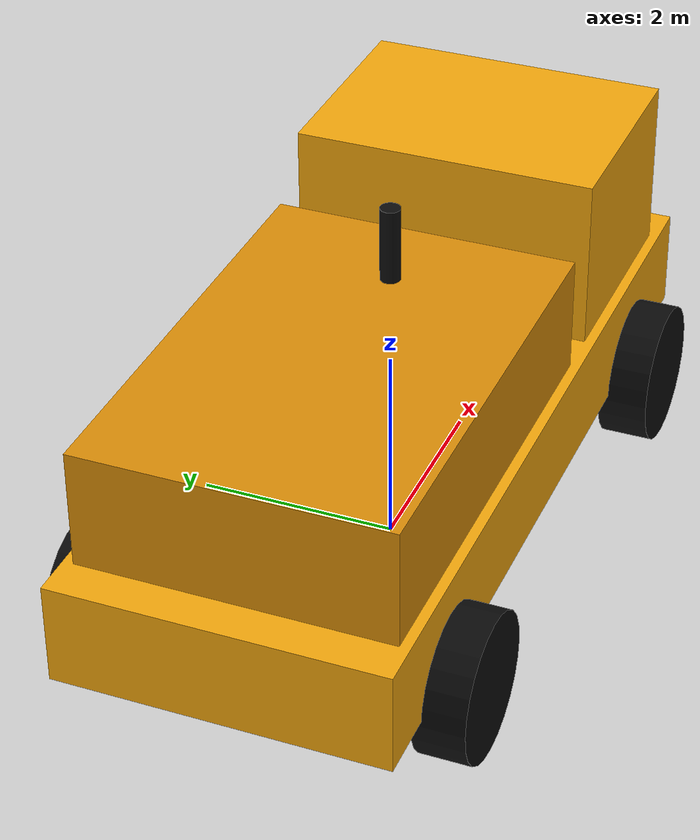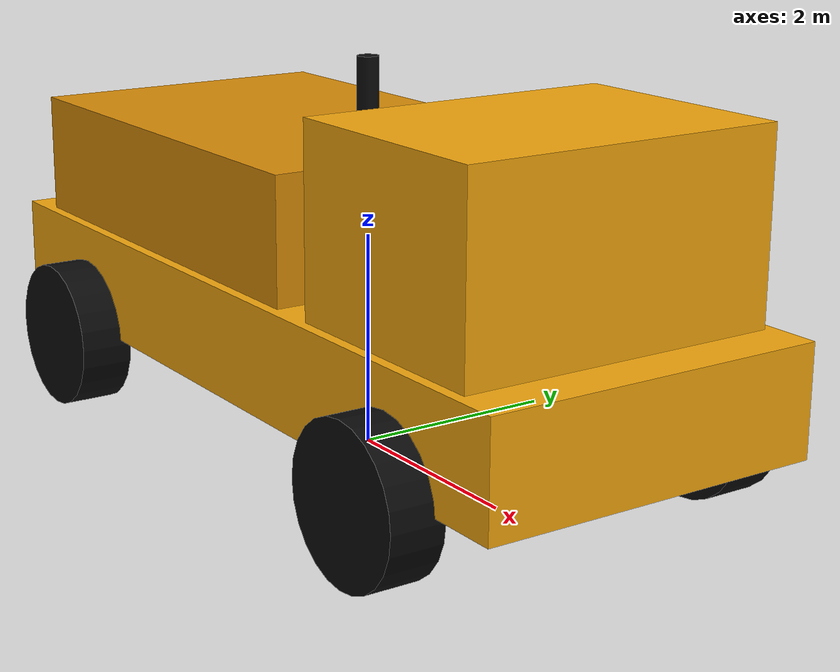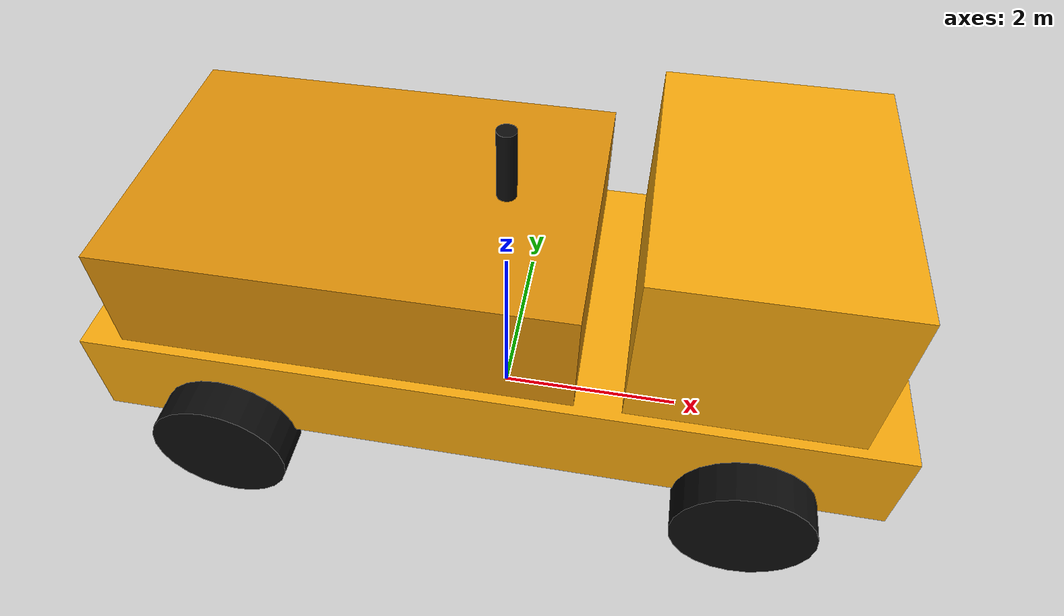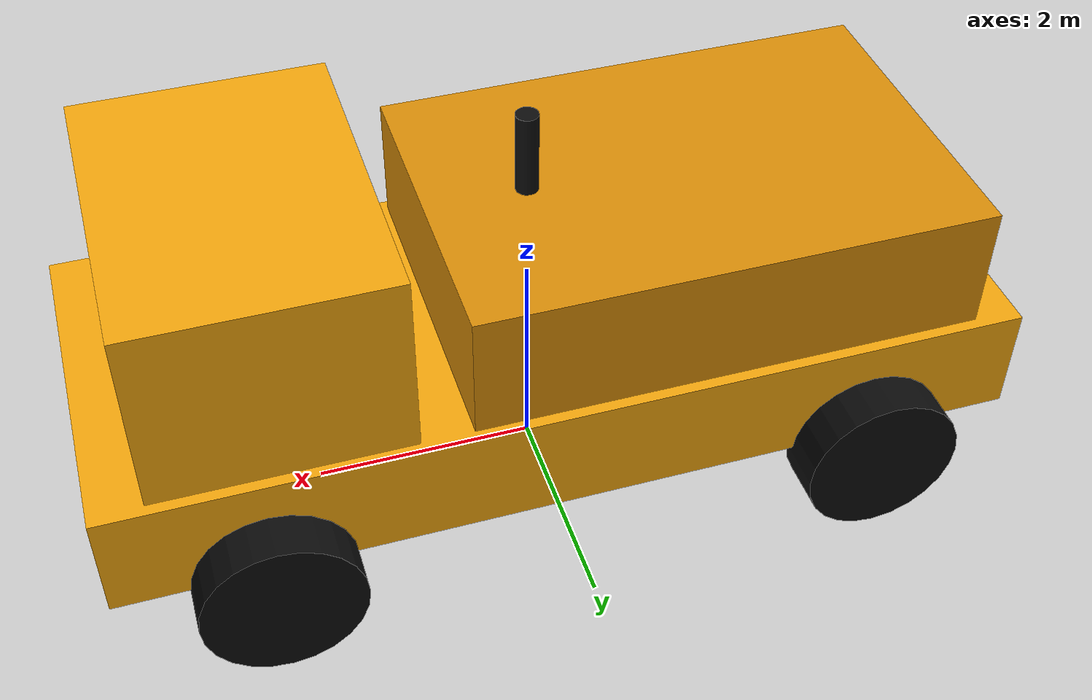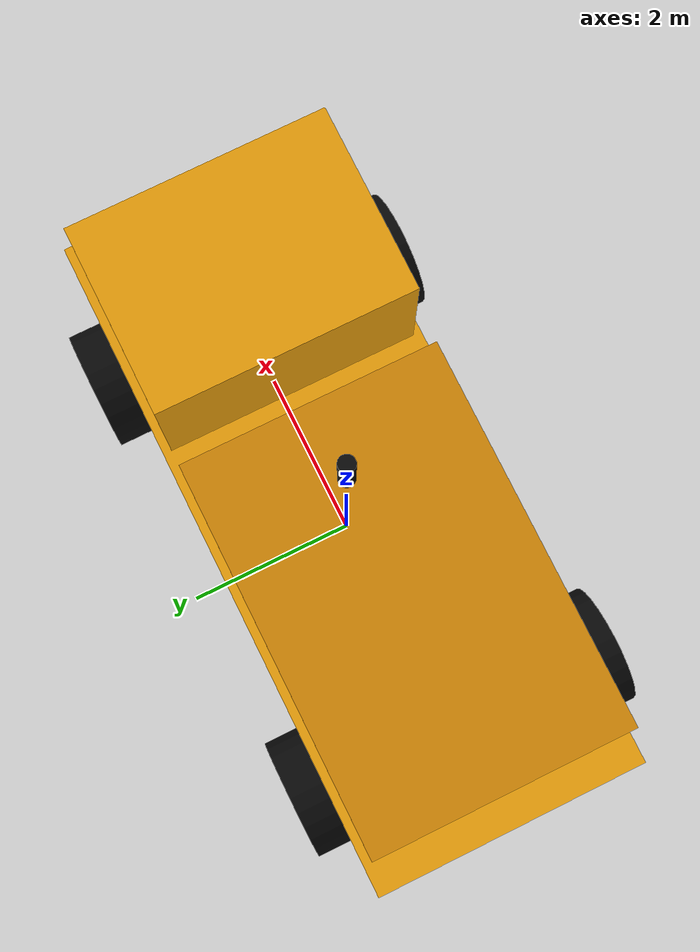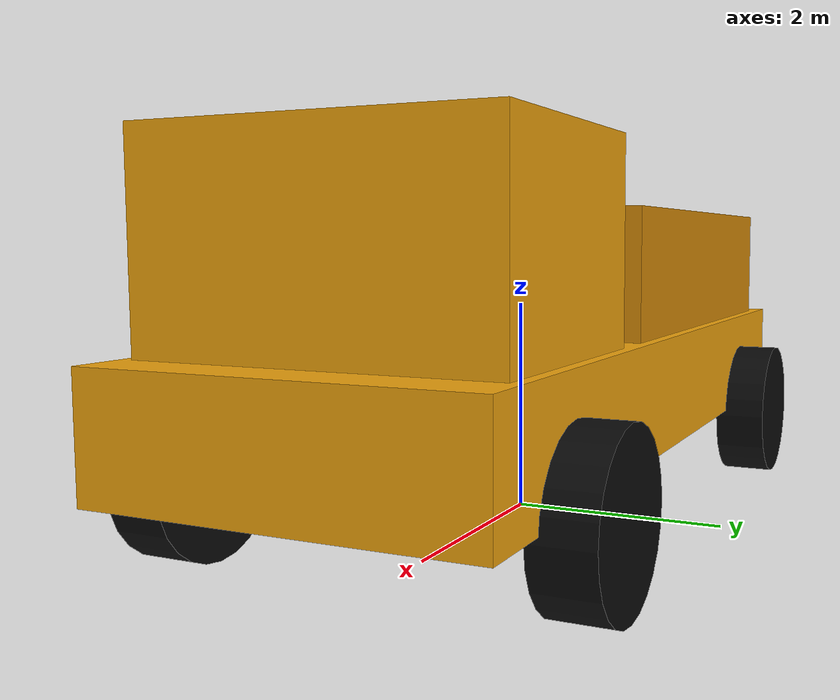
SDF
<?xml version="1.0"?>
<sdf version="1.9">
  <model name="HEMM_Dumper_01">
    <pose>0 0 0 0 0 0</pose>
    <self_collide>false</self_collide>

    <!-- Main chassis -->
    <link name="chassis">
      <pose>0 0 1.25 0 0 0</pose>
      <inertial>
        <mass>9000</mass>
        <inertia>
          <ixx>8000</ixx><iyy>22000</iyy><izz>26000</izz>
          <ixy>0</ixy><ixz>0</ixz><iyz>0</iyz>
        </inertia>
      </inertial>
      <collision name="collision">
        <geometry><box><size>8.0 3.2 1.0</size></box></geometry>
      </collision>
      <visual name="visual">
        <geometry><box><size>8.0 3.2 1.0</size></box></geometry>
        <material>
          <ambient>0.95 0.65 0.05 1</ambient>
          <diffuse>0.95 0.65 0.05 1</diffuse>
        </material>
      </visual>
    </link>

    <!-- Front cab -->
    <link name="front_body">
      <pose>2.45 0 2.35 0 0 0</pose>
      <inertial>
        <mass>1800</mass>
        <inertia>
          <ixx>1600</ixx><iyy>2400</iyy><izz>1800</izz>
          <ixy>0</ixy><ixz>0</ixz><iyz>0</iyz>
        </inertia>
      </inertial>
      <collision name="collision">
        <geometry><box><size>2.2 3.0 2.2</size></box></geometry>
      </collision>
      <visual name="visual">
        <geometry><box><size>2.2 3.0 2.2</size></box></geometry>
        <material>
          <ambient>0.95 0.65 0.05 1</ambient>
          <diffuse>0.95 0.65 0.05 1</diffuse>
        </material>
      </visual>
    </link>

    <!-- Dump bed -->
    <link name="dump_bed">
      <pose>-1.35 0 2.15 0 0 0</pose>
      <inertial>
        <mass>1400</mass>
        <inertia>
          <ixx>1700</ixx><iyy>2800</iyy><izz>3000</izz>
          <ixy>0</ixy><ixz>0</ixz><iyz>0</iyz>
        </inertia>
      </inertial>
      <collision name="collision">
        <geometry><box><size>4.5 3.0 1.5</size></box></geometry>
      </collision>
      <visual name="visual">
        <geometry><box><size>4.5 3.0 1.5</size></box></geometry>
        <material>
          <ambient>0.85 0.55 0.03 1</ambient>
          <diffuse>0.85 0.55 0.03 1</diffuse>
        </material>
      </visual>
    </link>

    <!-- Four wheels. Wheel cylinders have their axis along Y. -->
    <link name="left_front_wheel">
      <pose>2.65 1.75 0.70 1.5707963 0 0</pose>
      <inertial>
        <mass>450</mass>
        <inertia>
          <ixx>82</ixx><iyy>110</iyy><izz>82</izz>
          <ixy>0</ixy><ixz>0</ixz><iyz>0</iyz>
        </inertia>
      </inertial>
      <collision name="collision">
        <geometry><cylinder><radius>0.70</radius><length>0.50</length></cylinder></geometry>
      </collision>
      <visual name="visual">
        <geometry><cylinder><radius>0.70</radius><length>0.50</length></cylinder></geometry>
        <material>
          <ambient>0.04 0.04 0.04 1</ambient>
          <diffuse>0.04 0.04 0.04 1</diffuse>
        </material>
      </visual>
    </link>

    <link name="right_front_wheel">
      <pose>2.65 -1.75 0.70 1.5707963 0 0</pose>
      <inertial>
        <mass>450</mass>
        <inertia>
          <ixx>82</ixx><iyy>110</iyy><izz>82</izz>
          <ixy>0</ixy><ixz>0</ixz><iyz>0</iyz>
        </inertia>
      </inertial>
      <collision name="collision">
        <geometry><cylinder><radius>0.70</radius><length>0.50</length></cylinder></geometry>
      </collision>
      <visual name="visual">
        <geometry><cylinder><radius>0.70</radius><length>0.50</length></cylinder></geometry>
        <material>
          <ambient>0.04 0.04 0.04 1</ambient>
          <diffuse>0.04 0.04 0.04 1</diffuse>
        </material>
      </visual>
    </link>

    <link name="left_rear_wheel">
      <pose>-2.65 1.75 0.70 1.5707963 0 0</pose>
      <inertial>
        <mass>500</mass>
        <inertia>
          <ixx>92</ixx><iyy>122</iyy><izz>92</izz>
          <ixy>0</ixy><ixz>0</ixz><iyz>0</iyz>
        </inertia>
      </inertial>
      <collision name="collision">
        <geometry><cylinder><radius>0.70</radius><length>0.50</length></cylinder></geometry>
      </collision>
      <visual name="visual">
        <geometry><cylinder><radius>0.70</radius><length>0.50</length></cylinder></geometry>
        <material>
          <ambient>0.04 0.04 0.04 1</ambient>
          <diffuse>0.04 0.04 0.04 1</diffuse>
        </material>
      </visual>
    </link>

    <link name="right_rear_wheel">
      <pose>-2.65 -1.75 0.70 1.5707963 0 0</pose>
      <inertial>
        <mass>500</mass>
        <inertia>
          <ixx>92</ixx><iyy>122</iyy><izz>92</izz>
          <ixy>0</ixy><ixz>0</ixz><iyz>0</iyz>
        </inertia>
      </inertial>
      <collision name="collision">
        <geometry><cylinder><radius>0.70</radius><length>0.50</length></cylinder></geometry>
      </collision>
      <visual name="visual">
        <geometry><cylinder><radius>0.70</radius><length>0.50</length></cylinder></geometry>
        <material>
          <ambient>0.04 0.04 0.04 1</ambient>
          <diffuse>0.04 0.04 0.04 1</diffuse>
        </material>
      </visual>
    </link>

    <!-- Simple sensor mast -->
    <link name="sensor_mast">
      <pose>0 0 3.15 0 0 0</pose>
      <inertial><mass>80</mass><inertia><ixx>20</ixx><iyy>20</iyy><izz>20</izz><ixy>0</ixy><ixz>0</ixz><iyz>0</iyz></inertia></inertial>
      <visual name="visual">
        <geometry><cylinder><radius>0.10</radius><length>1.0</length></cylinder></geometry>
        <material><ambient>0.05 0.05 0.05 1</ambient><diffuse>0.05 0.05 0.05 1</diffuse></material>
      </visual>
    </link>

    <!-- Wheel joints: all rotate about the vehicle Y axis. -->
    <joint name="front_left_wheel_joint" type="revolute">
      <parent>chassis</parent><child>left_front_wheel</child>
      <pose>2.65 1.75 0.70 0 0 0</pose>
      <axis><xyz>0 1 0</xyz><limit><lower>-1e16</lower><upper>1e16</upper></limit></axis>
    </joint>
    <joint name="front_right_wheel_joint" type="revolute">
      <parent>chassis</parent><child>right_front_wheel</child>
      <pose>2.65 -1.75 0.70 0 0 0</pose>
      <axis><xyz>0 1 0</xyz><limit><lower>-1e16</lower><upper>1e16</upper></limit></axis>
    </joint>
    <joint name="rear_left_wheel_joint" type="revolute">
      <parent>chassis</parent><child>left_rear_wheel</child>
      <pose>-2.65 1.75 0.70 0 0 0</pose>
      <axis><xyz>0 1 0</xyz><limit><lower>-1e16</lower><upper>1e16</upper></limit></axis>
    </joint>
    <joint name="rear_right_wheel_joint" type="revolute">
      <parent>chassis</parent><child>right_rear_wheel</child>
      <pose>-2.65 -1.75 0.70 0 0 0</pose>
      <axis><xyz>0 1 0</xyz><limit><lower>-1e16</lower><upper>1e16</upper></limit></axis>
    </joint>

    <joint name="front_body_joint" type="fixed">
      <parent>chassis</parent><child>front_body</child>
    </joint>
    <joint name="dump_bed_joint" type="fixed">
      <parent>chassis</parent><child>dump_bed</child>
    </joint>
    <joint name="sensor_mast_joint" type="fixed">
      <parent>chassis</parent><child>sensor_mast</child>
    </joint>

    <!-- Gazebo Harmonic differential drive: both wheels on each side are driven. -->
    <plugin filename="gz-sim-diff-drive-system" name="gz::sim::systems::DiffDrive">
      <left_joint>front_left_wheel_joint</left_joint>
      <left_joint>rear_left_wheel_joint</left_joint>
      <right_joint>front_right_wheel_joint</right_joint>
      <right_joint>rear_right_wheel_joint</right_joint>
      <wheel_separation>3.50</wheel_separation>
      <wheel_radius>0.70</wheel_radius>
      <topic>/cmd_vel</topic>
      <odom_topic>/odom</odom_topic>
      <frame_id>odom</frame_id>
      <child_frame_id>base_link</child_frame_id>
      <odom_publish_frequency>30</odom_publish_frequency>
    </plugin>
  </model>
</sdf>
